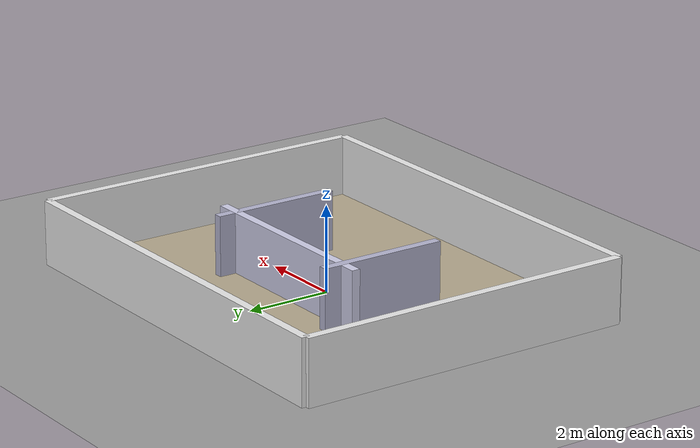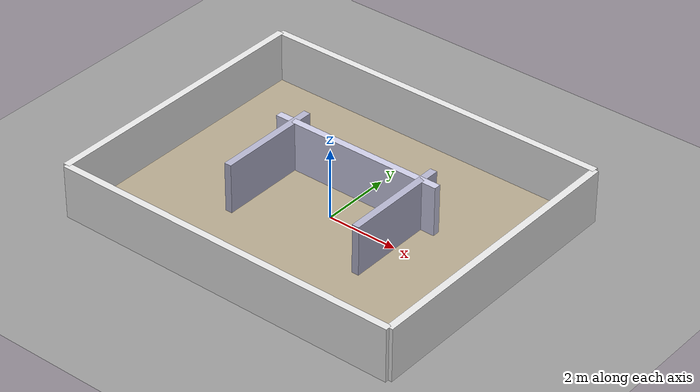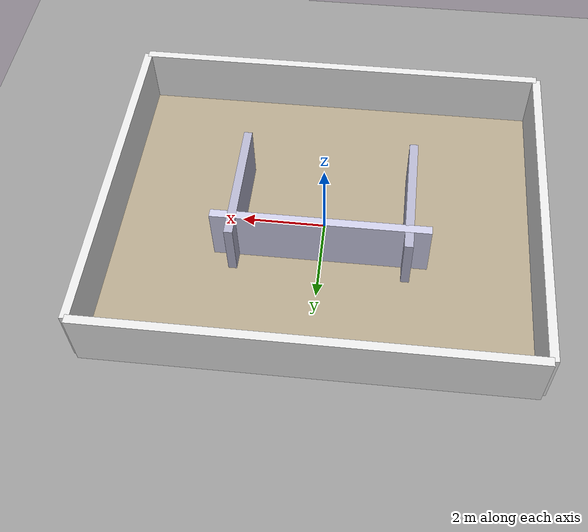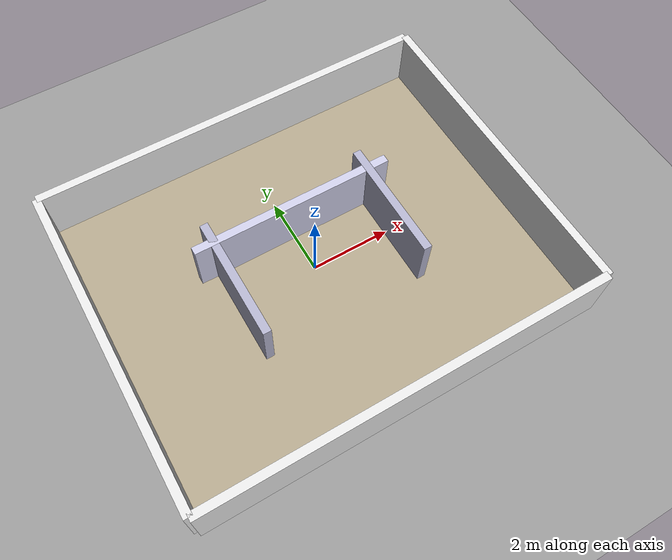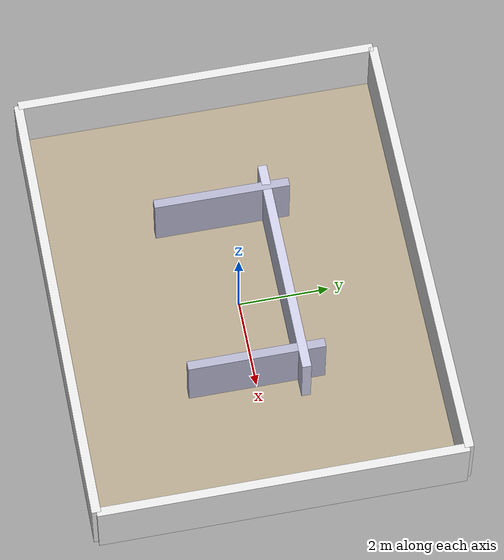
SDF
<?xml version="1.0" ?>
<sdf version="1.9">
  <world name="custom_room">

    <!-- 传感器系统插件 -->
    <plugin filename="gz-sim8-sensors-system" name="gz::sim::systems::Sensors">
      <render_engine>ogre</render_engine>
    </plugin>

    <!-- 物理引擎插件 -->
    <plugin filename="gz-sim8-physics-system" name="gz::sim::systems::Physics"/>

    <!-- 场景广播插件 -->
    <plugin filename="gz-sim8-scene-broadcaster-system" name="gz::sim::systems::SceneBroadcaster"/>

    <!-- 用户命令插件 -->
    <plugin filename="gz-sim8-user-commands-system" name="gz::sim::systems::UserCommands"/>

    <!-- 主光源：方向光（太阳光） -->
    <light type="directional" name="sun">
      <cast_shadows>true</cast_shadows>
      <pose>0 0 10 0 0 0</pose>
      <diffuse>0.9 0.85 0.7 1</diffuse>
      <specular>0.5 0.5 0.5 1</specular>
      <direction>0.5 -0.5 -1</direction>
      <attenuation>
        <range>1000</range>
        <constant>0.9</constant>
        <linear>0.01</linear>
        <quadratic>0.001</quadratic>
      </attenuation>
    </light>

    <!-- 地面 -->
    <model name="ground">
      <static>true</static>
      <link name="link">
        <collision name="collision">
          <geometry>
            <plane>
              <normal>0 0 1</normal>
              <size>20 20</size>
            </plane>
          </geometry>
        </collision>
        <visual name="visual">
          <geometry>
            <plane>
              <normal>0 0 1</normal>
              <size>20 20</size>
            </plane>
          </geometry>
          <material>
            <ambient>0.5 0.5 0.5 1</ambient>
            <diffuse>0.6 0.6 0.6 1</diffuse>
          </material>
        </visual>
      </link>
    </model>

    <!-- 房屋地板 -->
    <model name="floor">
      <static>true</static>
      <link name="link">
        <pose>0 0 0.05 0 0 0</pose>
        <collision name="collision">
          <geometry>
            <box>
              <size>10 8 0.1</size>
            </box>
          </geometry>
        </collision>
        <visual name="visual">
          <geometry>
            <box>
              <size>10 8 0.1</size>
            </box>
          </geometry>
          <material>
            <ambient>0.6 0.55 0.45 1</ambient>
            <diffuse>0.7 0.65 0.55 1</diffuse>
          </material>
        </visual>
      </link>
    </model>

    <!-- 外墙壁（简化版，只做4面墙） -->
    <model name="walls">
      <static>true</static>
      <!-- 北墙 -->
      <link name="north">
        <pose>0 4 0.75 0 0 0</pose>
        <collision name="collision">
          <geometry><box><size>10 0.2 1.5</size></box></geometry>
        </collision>
        <visual name="visual">
          <geometry><box><size>10 0.2 1.5</size></box></geometry>
          <material>
            <ambient>0.8 0.8 0.8 1</ambient>
            <diffuse>0.9 0.9 0.9 1</diffuse>
          </material>
        </visual>
      </link>
      <!-- 南墙 -->
      <link name="south">
        <pose>0 -4 0.75 0 0 0</pose>
        <collision name="collision">
          <geometry><box><size>10 0.2 1.5</size></box></geometry>
        </collision>
        <visual name="visual">
          <geometry><box><size>10 0.2 1.5</size></box></geometry>
          <material>
            <ambient>0.8 0.8 0.8 1</ambient>
            <diffuse>0.9 0.9 0.9 1</diffuse>
          </material>
        </visual>
      </link>
      <!-- 东墙 -->
      <link name="east">
        <pose>5 0 0.75 0 0 0</pose>
        <collision name="collision">
          <geometry><box><size>0.2 8 1.5</size></box></geometry>
        </collision>
        <visual name="visual">
          <geometry><box><size>0.2 8 1.5</size></box></geometry>
          <material>
            <ambient>0.8 0.8 0.8 1</ambient>
            <diffuse>0.9 0.9 0.9 1</diffuse>
          </material>
        </visual>
      </link>
      <!-- 西墙 -->
      <link name="west">
        <pose>-5 0 0.75 0 0 0</pose>
        <collision name="collision">
          <geometry><box><size>0.2 8 1.5</size></box></geometry>
        </collision>
        <visual name="visual">
          <geometry><box><size>0.2 8 1.5</size></box></geometry>
          <material>
            <ambient>0.8 0.8 0.8 1</ambient>
            <diffuse>0.9 0.9 0.9 1</diffuse>
          </material>
        </visual>
      </link>
    </model>

    <!-- 内墙：分隔客厅和卧室区 -->
    <model name="inner_wall">
      <static>true</static>
      <link name="wall">
        <pose>0 1 0.75 0 0 0</pose>
        <collision name="collision">
          <geometry><box><size>5 0.2 1.5</size></box></geometry>
        </collision>
        <visual name="visual">
          <geometry><box><size>5 0.2 1.5</size></box></geometry>
          <material>
            <ambient>0.7 0.7 0.8 1</ambient>
            <diffuse>0.8 0.8 0.9 1</diffuse>
          </material>
        </visual>
      </link>
    </model>

    <!-- 室内两堵墙 -->
    <model name="indoor_walls">
      <static>true</static>
      <!-- 第一堵墙 -->
      <link name="wall1">
        <pose>2 0 0.75 0 0 0</pose>
        <collision name="collision">
          <geometry><box><size>0.2 3 1.5</size></box></geometry>
        </collision>
        <visual name="visual">
          <geometry><box><size>0.2 3 1.5</size></box></geometry>
          <material>
            <ambient>0.6 0.6 0.7 1</ambient>
            <diffuse>0.7 0.7 0.8 1</diffuse>
          </material>
        </visual>
      </link>
      <!-- 第二堵墙 -->
      <link name="wall2">
        <pose>-2 0 0.75 0 0 0</pose>
        <collision name="collision">
          <geometry><box><size>0.2 3 1.5</size></box></geometry>
        </collision>
        <visual name="visual">
          <geometry><box><size>0.2 3 1.5</size></box></geometry>
          <material>
            <ambient>0.6 0.6 0.7 1</ambient>
            <diffuse>0.7 0.7 0.8 1</diffuse>
          </material>
        </visual>
      </link>
    </model>

  </world>
</sdf>
